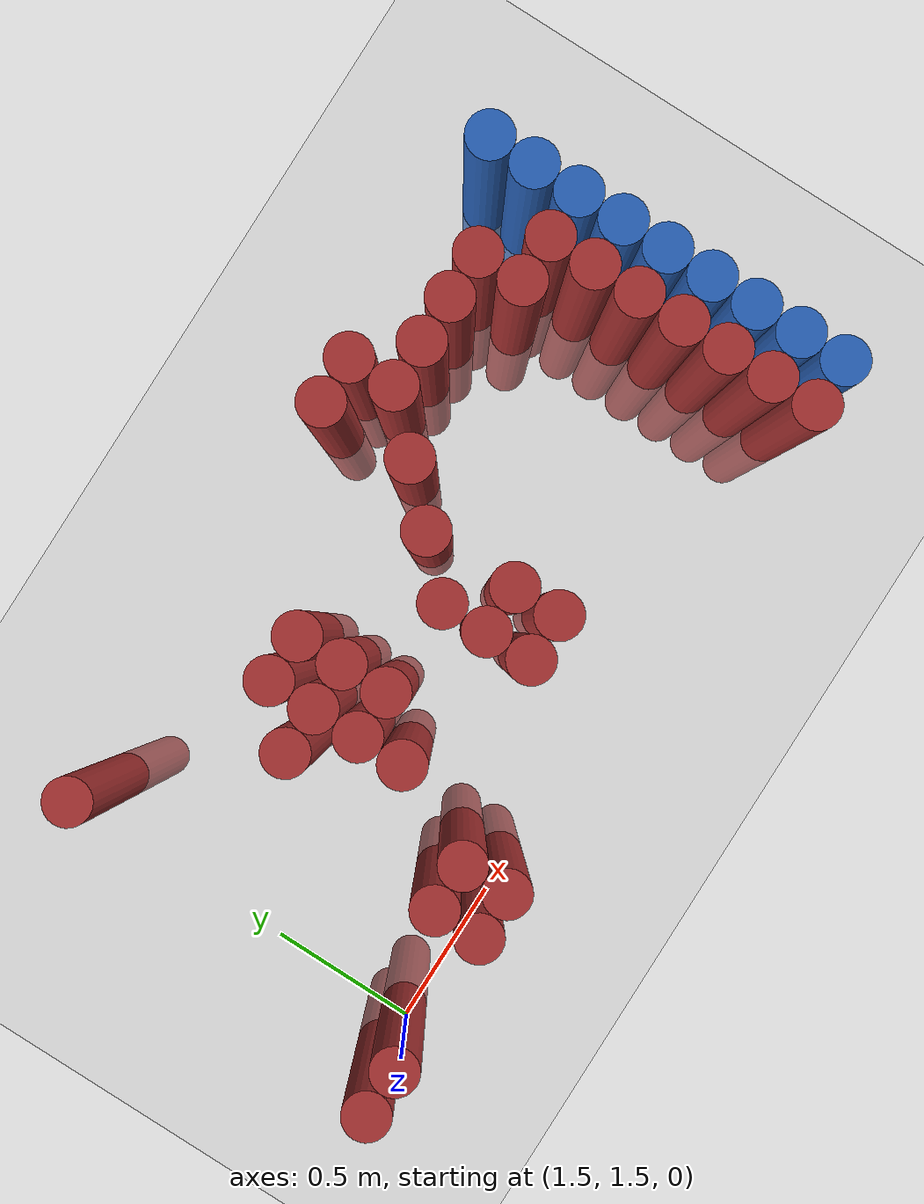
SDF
<sdf version="1.6">
 <world name="default">
  <model name="ground_plane">
   <static>1</static>
   <link name="link">
    <collision name="collision">
     <geometry><plane><normal>0 0 1</normal><size>100 100</size></plane></geometry>
     <surface><friction><ode><mu>100</mu><mu2>50</mu2></ode></friction></surface>
    </collision>
    <visual name="visual">
     <cast_shadows>0</cast_shadows>
     <geometry><plane><normal>0 0 1</normal><size>100 100</size></plane></geometry>
     <material>
      <script><uri>file://media/materials/scripts/gazebo.material</uri><name>Gazebo/Grey</name></script>
     </material>
    </visual>
   </link>
  </model>
  <model name="unit_cylinder_136">
   <static>1</static>
   <pose>3.925000 1.675000 0.000000 0.000000 0.000000 0.000000</pose>
   <link name="link">
    <inertial>
     <mass>1</mass>
     <inertia><ixx>0.145833</ixx><ixy>0</ixy><ixz>0</ixz><iyy>0.145833</iyy><iyz>0</iyz><izz>0.125</izz></inertia>
    </inertial>
    <collision name="collision">
     <geometry><cylinder><radius>0.075000</radius><length>1.5</length></cylinder></geometry>
    </collision>
    <visual name="visual">
     <geometry><cylinder><radius>0.075000</radius><length>1.5</length></cylinder></geometry>
     <material>
      <ambient>0.152000 0.379000 0.720000 1</ambient>
      <diffuse>0.152000 0.379000 0.720000 1</diffuse>
     </material>
     <material>
      <script><name>Gazebo/Grey</name><uri>file://media/materials/scripts/gazebo.material</uri></script>
     </material>
    </visual>
   </link>
  </model>
  <model name="unit_cylinder_138">
   <static>1</static>
   <pose>3.925000 1.825000 0.000000 0.000000 0.000000 0.000000</pose>
   <link name="link">
    <inertial>
     <mass>1</mass>
     <inertia><ixx>0.145833</ixx><ixy>0</ixy><ixz>0</ixz><iyy>0.145833</iyy><iyz>0</iyz><izz>0.125</izz></inertia>
    </inertial>
    <collision name="collision">
     <geometry><cylinder><radius>0.075000</radius><length>1.5</length></cylinder></geometry>
    </collision>
    <visual name="visual">
     <geometry><cylinder><radius>0.075000</radius><length>1.5</length></cylinder></geometry>
     <material>
      <ambient>0.152000 0.379000 0.720000 1</ambient>
      <diffuse>0.152000 0.379000 0.720000 1</diffuse>
     </material>
     <material>
      <script><name>Gazebo/Grey</name><uri>file://media/materials/scripts/gazebo.material</uri></script>
     </material>
    </visual>
   </link>
  </model>
  <model name="unit_cylinder_140">
   <static>1</static>
   <pose>3.925000 1.975000 0.000000 0.000000 0.000000 0.000000</pose>
   <link name="link">
    <inertial>
     <mass>1</mass>
     <inertia><ixx>0.145833</ixx><ixy>0</ixy><ixz>0</ixz><iyy>0.145833</iyy><iyz>0</iyz><izz>0.125</izz></inertia>
    </inertial>
    <collision name="collision">
     <geometry><cylinder><radius>0.075000</radius><length>1.5</length></cylinder></geometry>
    </collision>
    <visual name="visual">
     <geometry><cylinder><radius>0.075000</radius><length>1.5</length></cylinder></geometry>
     <material>
      <ambient>0.152000 0.379000 0.720000 1</ambient>
      <diffuse>0.152000 0.379000 0.720000 1</diffuse>
     </material>
     <material>
      <script><name>Gazebo/Grey</name><uri>file://media/materials/scripts/gazebo.material</uri></script>
     </material>
    </visual>
   </link>
  </model>
  <model name="unit_cylinder_142">
   <static>1</static>
   <pose>3.925000 2.125000 0.000000 0.000000 0.000000 0.000000</pose>
   <link name="link">
    <inertial>
     <mass>1</mass>
     <inertia><ixx>0.145833</ixx><ixy>0</ixy><ixz>0</ixz><iyy>0.145833</iyy><iyz>0</iyz><izz>0.125</izz></inertia>
    </inertial>
    <collision name="collision">
     <geometry><cylinder><radius>0.075000</radius><length>1.5</length></cylinder></geometry>
    </collision>
    <visual name="visual">
     <geometry><cylinder><radius>0.075000</radius><length>1.5</length></cylinder></geometry>
     <material>
      <ambient>0.152000 0.379000 0.720000 1</ambient>
      <diffuse>0.152000 0.379000 0.720000 1</diffuse>
     </material>
     <material>
      <script><name>Gazebo/Grey</name><uri>file://media/materials/scripts/gazebo.material</uri></script>
     </material>
    </visual>
   </link>
  </model>
  <model name="unit_cylinder_144">
   <static>1</static>
   <pose>3.925000 2.275000 0.000000 0.000000 0.000000 0.000000</pose>
   <link name="link">
    <inertial>
     <mass>1</mass>
     <inertia><ixx>0.145833</ixx><ixy>0</ixy><ixz>0</ixz><iyy>0.145833</iyy><iyz>0</iyz><izz>0.125</izz></inertia>
    </inertial>
    <collision name="collision">
     <geometry><cylinder><radius>0.075000</radius><length>1.5</length></cylinder></geometry>
    </collision>
    <visual name="visual">
     <geometry><cylinder><radius>0.075000</radius><length>1.5</length></cylinder></geometry>
     <material>
      <ambient>0.152000 0.379000 0.720000 1</ambient>
      <diffuse>0.152000 0.379000 0.720000 1</diffuse>
     </material>
     <material>
      <script><name>Gazebo/Grey</name><uri>file://media/materials/scripts/gazebo.material</uri></script>
     </material>
    </visual>
   </link>
  </model>
  <model name="unit_cylinder_146">
   <static>1</static>
   <pose>3.925000 2.425000 0.000000 0.000000 0.000000 0.000000</pose>
   <link name="link">
    <inertial>
     <mass>1</mass>
     <inertia><ixx>0.145833</ixx><ixy>0</ixy><ixz>0</ixz><iyy>0.145833</iyy><iyz>0</iyz><izz>0.125</izz></inertia>
    </inertial>
    <collision name="collision">
     <geometry><cylinder><radius>0.075000</radius><length>1.5</length></cylinder></geometry>
    </collision>
    <visual name="visual">
     <geometry><cylinder><radius>0.075000</radius><length>1.5</length></cylinder></geometry>
     <material>
      <ambient>0.152000 0.379000 0.720000 1</ambient>
      <diffuse>0.152000 0.379000 0.720000 1</diffuse>
     </material>
     <material>
      <script><name>Gazebo/Grey</name><uri>file://media/materials/scripts/gazebo.material</uri></script>
     </material>
    </visual>
   </link>
  </model>
  <model name="unit_cylinder_148">
   <static>1</static>
   <pose>3.925000 2.575000 0.000000 0.000000 0.000000 0.000000</pose>
   <link name="link">
    <inertial>
     <mass>1</mass>
     <inertia><ixx>0.145833</ixx><ixy>0</ixy><ixz>0</ixz><iyy>0.145833</iyy><iyz>0</iyz><izz>0.125</izz></inertia>
    </inertial>
    <collision name="collision">
     <geometry><cylinder><radius>0.075000</radius><length>1.5</length></cylinder></geometry>
    </collision>
    <visual name="visual">
     <geometry><cylinder><radius>0.075000</radius><length>1.5</length></cylinder></geometry>
     <material>
      <ambient>0.152000 0.379000 0.720000 1</ambient>
      <diffuse>0.152000 0.379000 0.720000 1</diffuse>
     </material>
     <material>
      <script><name>Gazebo/Grey</name><uri>file://media/materials/scripts/gazebo.material</uri></script>
     </material>
    </visual>
   </link>
  </model>
  <model name="unit_cylinder_150">
   <static>1</static>
   <pose>3.925000 2.725000 0.000000 0.000000 0.000000 0.000000</pose>
   <link name="link">
    <inertial>
     <mass>1</mass>
     <inertia><ixx>0.145833</ixx><ixy>0</ixy><ixz>0</ixz><iyy>0.145833</iyy><iyz>0</iyz><izz>0.125</izz></inertia>
    </inertial>
    <collision name="collision">
     <geometry><cylinder><radius>0.075000</radius><length>1.5</length></cylinder></geometry>
    </collision>
    <visual name="visual">
     <geometry><cylinder><radius>0.075000</radius><length>1.5</length></cylinder></geometry>
     <material>
      <ambient>0.152000 0.379000 0.720000 1</ambient>
      <diffuse>0.152000 0.379000 0.720000 1</diffuse>
     </material>
     <material>
      <script><name>Gazebo/Grey</name><uri>file://media/materials/scripts/gazebo.material</uri></script>
     </material>
    </visual>
   </link>
  </model>
  <model name="unit_cylinder_420">
   <static>1</static>
   <pose>1.375000 1.525000 0.000000 0.000000 0.000000 0.000000</pose>
   <link name="link">
    <inertial>
     <mass>1</mass>
     <inertia><ixx>0.145833</ixx><ixy>0</ixy><ixz>0</ixz><iyy>0.145833</iyy><iyz>0</iyz><izz>0.125</izz></inertia>
    </inertial>
    <collision name="collision">
     <geometry><cylinder><radius>0.075000</radius><length>1.5</length></cylinder></geometry>
    </collision>
    <visual name="visual">
     <geometry><cylinder><radius>0.075000</radius><length>1.5</length></cylinder></geometry>
     <material>
      <ambient>0.648000 0.192000 0.192000 1</ambient>
      <diffuse>0.648000 0.192000 0.192000 1</diffuse>
     </material>
     <material>
      <script><name>Gazebo/Grey</name><uri>file://media/materials/scripts/gazebo.material</uri></script>
     </material>
    </visual>
   </link>
  </model>
  <model name="unit_cylinder_427">
   <static>1</static>
   <pose>1.525000 1.525000 0.000000 0.000000 0.000000 0.000000</pose>
   <link name="link">
    <inertial>
     <mass>1</mass>
     <inertia><ixx>0.145833</ixx><ixy>0</ixy><ixz>0</ixz><iyy>0.145833</iyy><iyz>0</iyz><izz>0.125</izz></inertia>
    </inertial>
    <collision name="collision">
     <geometry><cylinder><radius>0.075000</radius><length>1.5</length></cylinder></geometry>
    </collision>
    <visual name="visual">
     <geometry><cylinder><radius>0.075000</radius><length>1.5</length></cylinder></geometry>
     <material>
      <ambient>0.648000 0.192000 0.192000 1</ambient>
      <diffuse>0.648000 0.192000 0.192000 1</diffuse>
     </material>
     <material>
      <script><name>Gazebo/Grey</name><uri>file://media/materials/scripts/gazebo.material</uri></script>
     </material>
    </visual>
   </link>
  </model>
  <model name="unit_cylinder_437">
   <static>1</static>
   <pose>1.675000 2.725000 0.000000 0.000000 0.000000 0.000000</pose>
   <link name="link">
    <inertial>
     <mass>1</mass>
     <inertia><ixx>0.145833</ixx><ixy>0</ixy><ixz>0</ixz><iyy>0.145833</iyy><iyz>0</iyz><izz>0.125</izz></inertia>
    </inertial>
    <collision name="collision">
     <geometry><cylinder><radius>0.075000</radius><length>1.5</length></cylinder></geometry>
    </collision>
    <visual name="visual">
     <geometry><cylinder><radius>0.075000</radius><length>1.5</length></cylinder></geometry>
     <material>
      <ambient>0.648000 0.192000 0.192000 1</ambient>
      <diffuse>0.648000 0.192000 0.192000 1</diffuse>
     </material>
     <material>
      <script><name>Gazebo/Grey</name><uri>file://media/materials/scripts/gazebo.material</uri></script>
     </material>
    </visual>
   </link>
  </model>
  <model name="unit_cylinder_451">
   <static>1</static>
   <pose>1.975000 1.525000 0.000000 0.000000 0.000000 0.000000</pose>
   <link name="link">
    <inertial>
     <mass>1</mass>
     <inertia><ixx>0.145833</ixx><ixy>0</ixy><ixz>0</ixz><iyy>0.145833</iyy><iyz>0</iyz><izz>0.125</izz></inertia>
    </inertial>
    <collision name="collision">
     <geometry><cylinder><radius>0.075000</radius><length>1.5</length></cylinder></geometry>
    </collision>
    <visual name="visual">
     <geometry><cylinder><radius>0.075000</radius><length>1.5</length></cylinder></geometry>
     <material>
      <ambient>0.648000 0.192000 0.192000 1</ambient>
      <diffuse>0.648000 0.192000 0.192000 1</diffuse>
     </material>
     <material>
      <script><name>Gazebo/Grey</name><uri>file://media/materials/scripts/gazebo.material</uri></script>
     </material>
    </visual>
   </link>
  </model>
  <model name="unit_cylinder_452">
   <static>1</static>
   <pose>1.975000 1.675000 0.000000 0.000000 0.000000 0.000000</pose>
   <link name="link">
    <inertial>
     <mass>1</mass>
     <inertia><ixx>0.145833</ixx><ixy>0</ixy><ixz>0</ixz><iyy>0.145833</iyy><iyz>0</iyz><izz>0.125</izz></inertia>
    </inertial>
    <collision name="collision">
     <geometry><cylinder><radius>0.075000</radius><length>1.5</length></cylinder></geometry>
    </collision>
    <visual name="visual">
     <geometry><cylinder><radius>0.075000</radius><length>1.5</length></cylinder></geometry>
     <material>
      <ambient>0.648000 0.192000 0.192000 1</ambient>
      <diffuse>0.648000 0.192000 0.192000 1</diffuse>
     </material>
     <material>
      <script><name>Gazebo/Grey</name><uri>file://media/materials/scripts/gazebo.material</uri></script>
     </material>
    </visual>
   </link>
  </model>
  <model name="unit_cylinder_459">
   <static>1</static>
   <pose>2.125000 1.525000 0.000000 0.000000 0.000000 0.000000</pose>
   <link name="link">
    <inertial>
     <mass>1</mass>
     <inertia><ixx>0.145833</ixx><ixy>0</ixy><ixz>0</ixz><iyy>0.145833</iyy><iyz>0</iyz><izz>0.125</izz></inertia>
    </inertial>
    <collision name="collision">
     <geometry><cylinder><radius>0.075000</radius><length>1.5</length></cylinder></geometry>
    </collision>
    <visual name="visual">
     <geometry><cylinder><radius>0.075000</radius><length>1.5</length></cylinder></geometry>
     <material>
      <ambient>0.648000 0.192000 0.192000 1</ambient>
      <diffuse>0.648000 0.192000 0.192000 1</diffuse>
     </material>
     <material>
      <script><name>Gazebo/Grey</name><uri>file://media/materials/scripts/gazebo.material</uri></script>
     </material>
    </visual>
   </link>
  </model>
  <model name="unit_cylinder_460">
   <static>1</static>
   <pose>2.125000 1.675000 0.000000 0.000000 0.000000 0.000000</pose>
   <link name="link">
    <inertial>
     <mass>1</mass>
     <inertia><ixx>0.145833</ixx><ixy>0</ixy><ixz>0</ixz><iyy>0.145833</iyy><iyz>0</iyz><izz>0.125</izz></inertia>
    </inertial>
    <collision name="collision">
     <geometry><cylinder><radius>0.075000</radius><length>1.5</length></cylinder></geometry>
    </collision>
    <visual name="visual">
     <geometry><cylinder><radius>0.075000</radius><length>1.5</length></cylinder></geometry>
     <material>
      <ambient>0.648000 0.192000 0.192000 1</ambient>
      <diffuse>0.648000 0.192000 0.192000 1</diffuse>
     </material>
     <material>
      <script><name>Gazebo/Grey</name><uri>file://media/materials/scripts/gazebo.material</uri></script>
     </material>
    </visual>
   </link>
  </model>
  <model name="unit_cylinder_461">
   <static>1</static>
   <pose>2.125000 2.275000 0.000000 0.000000 0.000000 0.000000</pose>
   <link name="link">
    <inertial>
     <mass>1</mass>
     <inertia><ixx>0.145833</ixx><ixy>0</ixy><ixz>0</ixz><iyy>0.145833</iyy><iyz>0</iyz><izz>0.125</izz></inertia>
    </inertial>
    <collision name="collision">
     <geometry><cylinder><radius>0.075000</radius><length>1.5</length></cylinder></geometry>
    </collision>
    <visual name="visual">
     <geometry><cylinder><radius>0.075000</radius><length>1.5</length></cylinder></geometry>
     <material>
      <ambient>0.648000 0.192000 0.192000 1</ambient>
      <diffuse>0.648000 0.192000 0.192000 1</diffuse>
     </material>
     <material>
      <script><name>Gazebo/Grey</name><uri>file://media/materials/scripts/gazebo.material</uri></script>
     </material>
    </visual>
   </link>
  </model>
  <model name="unit_cylinder_465">
   <static>1</static>
   <pose>2.275000 1.975000 0.000000 0.000000 0.000000 0.000000</pose>
   <link name="link">
    <inertial>
     <mass>1</mass>
     <inertia><ixx>0.145833</ixx><ixy>0</ixy><ixz>0</ixz><iyy>0.145833</iyy><iyz>0</iyz><izz>0.125</izz></inertia>
    </inertial>
    <collision name="collision">
     <geometry><cylinder><radius>0.075000</radius><length>1.5</length></cylinder></geometry>
    </collision>
    <visual name="visual">
     <geometry><cylinder><radius>0.075000</radius><length>1.5</length></cylinder></geometry>
     <material>
      <ambient>0.648000 0.192000 0.192000 1</ambient>
      <diffuse>0.648000 0.192000 0.192000 1</diffuse>
     </material>
     <material>
      <script><name>Gazebo/Grey</name><uri>file://media/materials/scripts/gazebo.material</uri></script>
     </material>
    </visual>
   </link>
  </model>
  <model name="unit_cylinder_466">
   <static>1</static>
   <pose>2.275000 2.125000 0.000000 0.000000 0.000000 0.000000</pose>
   <link name="link">
    <inertial>
     <mass>1</mass>
     <inertia><ixx>0.145833</ixx><ixy>0</ixy><ixz>0</ixz><iyy>0.145833</iyy><iyz>0</iyz><izz>0.125</izz></inertia>
    </inertial>
    <collision name="collision">
     <geometry><cylinder><radius>0.075000</radius><length>1.5</length></cylinder></geometry>
    </collision>
    <visual name="visual">
     <geometry><cylinder><radius>0.075000</radius><length>1.5</length></cylinder></geometry>
     <material>
      <ambient>0.648000 0.192000 0.192000 1</ambient>
      <diffuse>0.648000 0.192000 0.192000 1</diffuse>
     </material>
     <material>
      <script><name>Gazebo/Grey</name><uri>file://media/materials/scripts/gazebo.material</uri></script>
     </material>
    </visual>
   </link>
  </model>
  <model name="unit_cylinder_467">
   <static>1</static>
   <pose>2.275000 2.275000 0.000000 0.000000 0.000000 0.000000</pose>
   <link name="link">
    <inertial>
     <mass>1</mass>
     <inertia><ixx>0.145833</ixx><ixy>0</ixy><ixz>0</ixz><iyy>0.145833</iyy><iyz>0</iyz><izz>0.125</izz></inertia>
    </inertial>
    <collision name="collision">
     <geometry><cylinder><radius>0.075000</radius><length>1.5</length></cylinder></geometry>
    </collision>
    <visual name="visual">
     <geometry><cylinder><radius>0.075000</radius><length>1.5</length></cylinder></geometry>
     <material>
      <ambient>0.648000 0.192000 0.192000 1</ambient>
      <diffuse>0.648000 0.192000 0.192000 1</diffuse>
     </material>
     <material>
      <script><name>Gazebo/Grey</name><uri>file://media/materials/scripts/gazebo.material</uri></script>
     </material>
    </visual>
   </link>
  </model>
  <model name="unit_cylinder_468">
   <static>1</static>
   <pose>2.275000 2.425000 0.000000 0.000000 0.000000 0.000000</pose>
   <link name="link">
    <inertial>
     <mass>1</mass>
     <inertia><ixx>0.145833</ixx><ixy>0</ixy><ixz>0</ixz><iyy>0.145833</iyy><iyz>0</iyz><izz>0.125</izz></inertia>
    </inertial>
    <collision name="collision">
     <geometry><cylinder><radius>0.075000</radius><length>1.5</length></cylinder></geometry>
    </collision>
    <visual name="visual">
     <geometry><cylinder><radius>0.075000</radius><length>1.5</length></cylinder></geometry>
     <material>
      <ambient>0.648000 0.192000 0.192000 1</ambient>
      <diffuse>0.648000 0.192000 0.192000 1</diffuse>
     </material>
     <material>
      <script><name>Gazebo/Grey</name><uri>file://media/materials/scripts/gazebo.material</uri></script>
     </material>
    </visual>
   </link>
  </model>
  <model name="unit_cylinder_475">
   <static>1</static>
   <pose>2.425000 2.125000 0.000000 0.000000 0.000000 0.000000</pose>
   <link name="link">
    <inertial>
     <mass>1</mass>
     <inertia><ixx>0.145833</ixx><ixy>0</ixy><ixz>0</ixz><iyy>0.145833</iyy><iyz>0</iyz><izz>0.125</izz></inertia>
    </inertial>
    <collision name="collision">
     <geometry><cylinder><radius>0.075000</radius><length>1.5</length></cylinder></geometry>
    </collision>
    <visual name="visual">
     <geometry><cylinder><radius>0.075000</radius><length>1.5</length></cylinder></geometry>
     <material>
      <ambient>0.648000 0.192000 0.192000 1</ambient>
      <diffuse>0.648000 0.192000 0.192000 1</diffuse>
     </material>
     <material>
      <script><name>Gazebo/Grey</name><uri>file://media/materials/scripts/gazebo.material</uri></script>
     </material>
    </visual>
   </link>
  </model>
  <model name="unit_cylinder_476">
   <static>1</static>
   <pose>2.425000 2.275000 0.000000 0.000000 0.000000 0.000000</pose>
   <link name="link">
    <inertial>
     <mass>1</mass>
     <inertia><ixx>0.145833</ixx><ixy>0</ixy><ixz>0</ixz><iyy>0.145833</iyy><iyz>0</iyz><izz>0.125</izz></inertia>
    </inertial>
    <collision name="collision">
     <geometry><cylinder><radius>0.075000</radius><length>1.5</length></cylinder></geometry>
    </collision>
    <visual name="visual">
     <geometry><cylinder><radius>0.075000</radius><length>1.5</length></cylinder></geometry>
     <material>
      <ambient>0.648000 0.192000 0.192000 1</ambient>
      <diffuse>0.648000 0.192000 0.192000 1</diffuse>
     </material>
     <material>
      <script><name>Gazebo/Grey</name><uri>file://media/materials/scripts/gazebo.material</uri></script>
     </material>
    </visual>
   </link>
  </model>
  <model name="unit_cylinder_477">
   <static>1</static>
   <pose>2.425000 2.425000 0.000000 0.000000 0.000000 0.000000</pose>
   <link name="link">
    <inertial>
     <mass>1</mass>
     <inertia><ixx>0.145833</ixx><ixy>0</ixy><ixz>0</ixz><iyy>0.145833</iyy><iyz>0</iyz><izz>0.125</izz></inertia>
    </inertial>
    <collision name="collision">
     <geometry><cylinder><radius>0.075000</radius><length>1.5</length></cylinder></geometry>
    </collision>
    <visual name="visual">
     <geometry><cylinder><radius>0.075000</radius><length>1.5</length></cylinder></geometry>
     <material>
      <ambient>0.648000 0.192000 0.192000 1</ambient>
      <diffuse>0.648000 0.192000 0.192000 1</diffuse>
     </material>
     <material>
      <script><name>Gazebo/Grey</name><uri>file://media/materials/scripts/gazebo.material</uri></script>
     </material>
    </visual>
   </link>
  </model>
  <model name="unit_cylinder_484">
   <static>1</static>
   <pose>2.725000 1.825000 0.000000 0.000000 0.000000 0.000000</pose>
   <link name="link">
    <inertial>
     <mass>1</mass>
     <inertia><ixx>0.145833</ixx><ixy>0</ixy><ixz>0</ixz><iyy>0.145833</iyy><iyz>0</iyz><izz>0.125</izz></inertia>
    </inertial>
    <collision name="collision">
     <geometry><cylinder><radius>0.075000</radius><length>1.5</length></cylinder></geometry>
    </collision>
    <visual name="visual">
     <geometry><cylinder><radius>0.075000</radius><length>1.5</length></cylinder></geometry>
     <material>
      <ambient>0.648000 0.192000 0.192000 1</ambient>
      <diffuse>0.648000 0.192000 0.192000 1</diffuse>
     </material>
     <material>
      <script><name>Gazebo/Grey</name><uri>file://media/materials/scripts/gazebo.material</uri></script>
     </material>
    </visual>
   </link>
  </model>
  <model name="unit_cylinder_485">
   <static>1</static>
   <pose>2.725000 1.975000 0.000000 0.000000 0.000000 0.000000</pose>
   <link name="link">
    <inertial>
     <mass>1</mass>
     <inertia><ixx>0.145833</ixx><ixy>0</ixy><ixz>0</ixz><iyy>0.145833</iyy><iyz>0</iyz><izz>0.125</izz></inertia>
    </inertial>
    <collision name="collision">
     <geometry><cylinder><radius>0.075000</radius><length>1.5</length></cylinder></geometry>
    </collision>
    <visual name="visual">
     <geometry><cylinder><radius>0.075000</radius><length>1.5</length></cylinder></geometry>
     <material>
      <ambient>0.648000 0.192000 0.192000 1</ambient>
      <diffuse>0.648000 0.192000 0.192000 1</diffuse>
     </material>
     <material>
      <script><name>Gazebo/Grey</name><uri>file://media/materials/scripts/gazebo.material</uri></script>
     </material>
    </visual>
   </link>
  </model>
  <model name="unit_cylinder_486">
   <static>1</static>
   <pose>2.725000 2.125000 0.000000 0.000000 0.000000 0.000000</pose>
   <link name="link">
    <inertial>
     <mass>1</mass>
     <inertia><ixx>0.145833</ixx><ixy>0</ixy><ixz>0</ixz><iyy>0.145833</iyy><iyz>0</iyz><izz>0.125</izz></inertia>
    </inertial>
    <collision name="collision">
     <geometry><cylinder><radius>0.075000</radius><length>1.5</length></cylinder></geometry>
    </collision>
    <visual name="visual">
     <geometry><cylinder><radius>0.075000</radius><length>1.5</length></cylinder></geometry>
     <material>
      <ambient>0.648000 0.192000 0.192000 1</ambient>
      <diffuse>0.648000 0.192000 0.192000 1</diffuse>
     </material>
     <material>
      <script><name>Gazebo/Grey</name><uri>file://media/materials/scripts/gazebo.material</uri></script>
     </material>
    </visual>
   </link>
  </model>
  <model name="unit_cylinder_495">
   <static>1</static>
   <pose>2.875000 1.825000 0.000000 0.000000 0.000000 0.000000</pose>
   <link name="link">
    <inertial>
     <mass>1</mass>
     <inertia><ixx>0.145833</ixx><ixy>0</ixy><ixz>0</ixz><iyy>0.145833</iyy><iyz>0</iyz><izz>0.125</izz></inertia>
    </inertial>
    <collision name="collision">
     <geometry><cylinder><radius>0.075000</radius><length>1.5</length></cylinder></geometry>
    </collision>
    <visual name="visual">
     <geometry><cylinder><radius>0.075000</radius><length>1.5</length></cylinder></geometry>
     <material>
      <ambient>0.648000 0.192000 0.192000 1</ambient>
      <diffuse>0.648000 0.192000 0.192000 1</diffuse>
     </material>
     <material>
      <script><name>Gazebo/Grey</name><uri>file://media/materials/scripts/gazebo.material</uri></script>
     </material>
    </visual>
   </link>
  </model>
  <model name="unit_cylinder_496">
   <static>1</static>
   <pose>2.875000 1.975000 0.000000 0.000000 0.000000 0.000000</pose>
   <link name="link">
    <inertial>
     <mass>1</mass>
     <inertia><ixx>0.145833</ixx><ixy>0</ixy><ixz>0</ixz><iyy>0.145833</iyy><iyz>0</iyz><izz>0.125</izz></inertia>
    </inertial>
    <collision name="collision">
     <geometry><cylinder><radius>0.075000</radius><length>1.5</length></cylinder></geometry>
    </collision>
    <visual name="visual">
     <geometry><cylinder><radius>0.075000</radius><length>1.5</length></cylinder></geometry>
     <material>
      <ambient>0.648000 0.192000 0.192000 1</ambient>
      <diffuse>0.648000 0.192000 0.192000 1</diffuse>
     </material>
     <material>
      <script><name>Gazebo/Grey</name><uri>file://media/materials/scripts/gazebo.material</uri></script>
     </material>
    </visual>
   </link>
  </model>
  <model name="unit_cylinder_497">
   <static>1</static>
   <pose>2.875000 2.275000 0.000000 0.000000 0.000000 0.000000</pose>
   <link name="link">
    <inertial>
     <mass>1</mass>
     <inertia><ixx>0.145833</ixx><ixy>0</ixy><ixz>0</ixz><iyy>0.145833</iyy><iyz>0</iyz><izz>0.125</izz></inertia>
    </inertial>
    <collision name="collision">
     <geometry><cylinder><radius>0.075000</radius><length>1.5</length></cylinder></geometry>
    </collision>
    <visual name="visual">
     <geometry><cylinder><radius>0.075000</radius><length>1.5</length></cylinder></geometry>
     <material>
      <ambient>0.648000 0.192000 0.192000 1</ambient>
      <diffuse>0.648000 0.192000 0.192000 1</diffuse>
     </material>
     <material>
      <script><name>Gazebo/Grey</name><uri>file://media/materials/scripts/gazebo.material</uri></script>
     </material>
    </visual>
   </link>
  </model>
  <model name="unit_cylinder_509">
   <static>1</static>
   <pose>3.025000 2.425000 0.000000 0.000000 0.000000 0.000000</pose>
   <link name="link">
    <inertial>
     <mass>1</mass>
     <inertia><ixx>0.145833</ixx><ixy>0</ixy><ixz>0</ixz><iyy>0.145833</iyy><iyz>0</iyz><izz>0.125</izz></inertia>
    </inertial>
    <collision name="collision">
     <geometry><cylinder><radius>0.075000</radius><length>1.5</length></cylinder></geometry>
    </collision>
    <visual name="visual">
     <geometry><cylinder><radius>0.075000</radius><length>1.5</length></cylinder></geometry>
     <material>
      <ambient>0.648000 0.192000 0.192000 1</ambient>
      <diffuse>0.648000 0.192000 0.192000 1</diffuse>
     </material>
     <material>
      <script><name>Gazebo/Grey</name><uri>file://media/materials/scripts/gazebo.material</uri></script>
     </material>
    </visual>
   </link>
  </model>
  <model name="unit_cylinder_510">
   <static>1</static>
   <pose>3.025000 2.725000 0.000000 0.000000 0.000000 0.000000</pose>
   <link name="link">
    <inertial>
     <mass>1</mass>
     <inertia><ixx>0.145833</ixx><ixy>0</ixy><ixz>0</ixz><iyy>0.145833</iyy><iyz>0</iyz><izz>0.125</izz></inertia>
    </inertial>
    <collision name="collision">
     <geometry><cylinder><radius>0.075000</radius><length>1.5</length></cylinder></geometry>
    </collision>
    <visual name="visual">
     <geometry><cylinder><radius>0.075000</radius><length>1.5</length></cylinder></geometry>
     <material>
      <ambient>0.648000 0.192000 0.192000 1</ambient>
      <diffuse>0.648000 0.192000 0.192000 1</diffuse>
     </material>
     <material>
      <script><name>Gazebo/Grey</name><uri>file://media/materials/scripts/gazebo.material</uri></script>
     </material>
    </visual>
   </link>
  </model>
  <model name="unit_cylinder_520">
   <static>1</static>
   <pose>3.175000 2.575000 0.000000 0.000000 0.000000 0.000000</pose>
   <link name="link">
    <inertial>
     <mass>1</mass>
     <inertia><ixx>0.145833</ixx><ixy>0</ixy><ixz>0</ixz><iyy>0.145833</iyy><iyz>0</iyz><izz>0.125</izz></inertia>
    </inertial>
    <collision name="collision">
     <geometry><cylinder><radius>0.075000</radius><length>1.5</length></cylinder></geometry>
    </collision>
    <visual name="visual">
     <geometry><cylinder><radius>0.075000</radius><length>1.5</length></cylinder></geometry>
     <material>
      <ambient>0.648000 0.192000 0.192000 1</ambient>
      <diffuse>0.648000 0.192000 0.192000 1</diffuse>
     </material>
     <material>
      <script><name>Gazebo/Grey</name><uri>file://media/materials/scripts/gazebo.material</uri></script>
     </material>
    </visual>
   </link>
  </model>
  <model name="unit_cylinder_521">
   <static>1</static>
   <pose>3.175000 2.725000 0.000000 0.000000 0.000000 0.000000</pose>
   <link name="link">
    <inertial>
     <mass>1</mass>
     <inertia><ixx>0.145833</ixx><ixy>0</ixy><ixz>0</ixz><iyy>0.145833</iyy><iyz>0</iyz><izz>0.125</izz></inertia>
    </inertial>
    <collision name="collision">
     <geometry><cylinder><radius>0.075000</radius><length>1.5</length></cylinder></geometry>
    </collision>
    <visual name="visual">
     <geometry><cylinder><radius>0.075000</radius><length>1.5</length></cylinder></geometry>
     <material>
      <ambient>0.648000 0.192000 0.192000 1</ambient>
      <diffuse>0.648000 0.192000 0.192000 1</diffuse>
     </material>
     <material>
      <script><name>Gazebo/Grey</name><uri>file://media/materials/scripts/gazebo.material</uri></script>
     </material>
    </visual>
   </link>
  </model>
  <model name="unit_cylinder_527">
   <static>1</static>
   <pose>3.325000 2.575000 0.000000 0.000000 0.000000 0.000000</pose>
   <link name="link">
    <inertial>
     <mass>1</mass>
     <inertia><ixx>0.145833</ixx><ixy>0</ixy><ixz>0</ixz><iyy>0.145833</iyy><iyz>0</iyz><izz>0.125</izz></inertia>
    </inertial>
    <collision name="collision">
     <geometry><cylinder><radius>0.075000</radius><length>1.5</length></cylinder></geometry>
    </collision>
    <visual name="visual">
     <geometry><cylinder><radius>0.075000</radius><length>1.5</length></cylinder></geometry>
     <material>
      <ambient>0.648000 0.192000 0.192000 1</ambient>
      <diffuse>0.648000 0.192000 0.192000 1</diffuse>
     </material>
     <material>
      <script><name>Gazebo/Grey</name><uri>file://media/materials/scripts/gazebo.material</uri></script>
     </material>
    </visual>
   </link>
  </model>
  <model name="unit_cylinder_534">
   <static>1</static>
   <pose>3.475000 2.575000 0.000000 0.000000 0.000000 0.000000</pose>
   <link name="link">
    <inertial>
     <mass>1</mass>
     <inertia><ixx>0.145833</ixx><ixy>0</ixy><ixz>0</ixz><iyy>0.145833</iyy><iyz>0</iyz><izz>0.125</izz></inertia>
    </inertial>
    <collision name="collision">
     <geometry><cylinder><radius>0.075000</radius><length>1.5</length></cylinder></geometry>
    </collision>
    <visual name="visual">
     <geometry><cylinder><radius>0.075000</radius><length>1.5</length></cylinder></geometry>
     <material>
      <ambient>0.648000 0.192000 0.192000 1</ambient>
      <diffuse>0.648000 0.192000 0.192000 1</diffuse>
     </material>
     <material>
      <script><name>Gazebo/Grey</name><uri>file://media/materials/scripts/gazebo.material</uri></script>
     </material>
    </visual>
   </link>
  </model>
  <model name="unit_cylinder_543">
   <static>1</static>
   <pose>3.625000 2.425000 0.000000 0.000000 0.000000 0.000000</pose>
   <link name="link">
    <inertial>
     <mass>1</mass>
     <inertia><ixx>0.145833</ixx><ixy>0</ixy><ixz>0</ixz><iyy>0.145833</iyy><iyz>0</iyz><izz>0.125</izz></inertia>
    </inertial>
    <collision name="collision">
     <geometry><cylinder><radius>0.075000</radius><length>1.5</length></cylinder></geometry>
    </collision>
    <visual name="visual">
     <geometry><cylinder><radius>0.075000</radius><length>1.5</length></cylinder></geometry>
     <material>
      <ambient>0.648000 0.192000 0.192000 1</ambient>
      <diffuse>0.648000 0.192000 0.192000 1</diffuse>
     </material>
     <material>
      <script><name>Gazebo/Grey</name><uri>file://media/materials/scripts/gazebo.material</uri></script>
     </material>
    </visual>
   </link>
  </model>
  <model name="unit_cylinder_544">
   <static>1</static>
   <pose>3.625000 2.575000 0.000000 0.000000 0.000000 0.000000</pose>
   <link name="link">
    <inertial>
     <mass>1</mass>
     <inertia><ixx>0.145833</ixx><ixy>0</ixy><ixz>0</ixz><iyy>0.145833</iyy><iyz>0</iyz><izz>0.125</izz></inertia>
    </inertial>
    <collision name="collision">
     <geometry><cylinder><radius>0.075000</radius><length>1.5</length></cylinder></geometry>
    </collision>
    <visual name="visual">
     <geometry><cylinder><radius>0.075000</radius><length>1.5</length></cylinder></geometry>
     <material>
      <ambient>0.648000 0.192000 0.192000 1</ambient>
      <diffuse>0.648000 0.192000 0.192000 1</diffuse>
     </material>
     <material>
      <script><name>Gazebo/Grey</name><uri>file://media/materials/scripts/gazebo.material</uri></script>
     </material>
    </visual>
   </link>
  </model>
  <model name="unit_cylinder_564">
   <static>1</static>
   <pose>3.775000 1.525000 0.000000 0.000000 0.000000 0.000000</pose>
   <link name="link">
    <inertial>
     <mass>1</mass>
     <inertia><ixx>0.145833</ixx><ixy>0</ixy><ixz>0</ixz><iyy>0.145833</iyy><iyz>0</iyz><izz>0.125</izz></inertia>
    </inertial>
    <collision name="collision">
     <geometry><cylinder><radius>0.075000</radius><length>1.5</length></cylinder></geometry>
    </collision>
    <visual name="visual">
     <geometry><cylinder><radius>0.075000</radius><length>1.5</length></cylinder></geometry>
     <material>
      <ambient>0.648000 0.192000 0.192000 1</ambient>
      <diffuse>0.648000 0.192000 0.192000 1</diffuse>
     </material>
     <material>
      <script><name>Gazebo/Grey</name><uri>file://media/materials/scripts/gazebo.material</uri></script>
     </material>
    </visual>
   </link>
  </model>
  <model name="unit_cylinder_565">
   <static>1</static>
   <pose>3.775000 1.675000 0.000000 0.000000 0.000000 0.000000</pose>
   <link name="link">
    <inertial>
     <mass>1</mass>
     <inertia><ixx>0.145833</ixx><ixy>0</ixy><ixz>0</ixz><iyy>0.145833</iyy><iyz>0</iyz><izz>0.125</izz></inertia>
    </inertial>
    <collision name="collision">
     <geometry><cylinder><radius>0.075000</radius><length>1.5</length></cylinder></geometry>
    </collision>
    <visual name="visual">
     <geometry><cylinder><radius>0.075000</radius><length>1.5</length></cylinder></geometry>
     <material>
      <ambient>0.648000 0.192000 0.192000 1</ambient>
      <diffuse>0.648000 0.192000 0.192000 1</diffuse>
     </material>
     <material>
      <script><name>Gazebo/Grey</name><uri>file://media/materials/scripts/gazebo.material</uri></script>
     </material>
    </visual>
   </link>
  </model>
  <model name="unit_cylinder_566">
   <static>1</static>
   <pose>3.775000 1.825000 0.000000 0.000000 0.000000 0.000000</pose>
   <link name="link">
    <inertial>
     <mass>1</mass>
     <inertia><ixx>0.145833</ixx><ixy>0</ixy><ixz>0</ixz><iyy>0.145833</iyy><iyz>0</iyz><izz>0.125</izz></inertia>
    </inertial>
    <collision name="collision">
     <geometry><cylinder><radius>0.075000</radius><length>1.5</length></cylinder></geometry>
    </collision>
    <visual name="visual">
     <geometry><cylinder><radius>0.075000</radius><length>1.5</length></cylinder></geometry>
     <material>
      <ambient>0.648000 0.192000 0.192000 1</ambient>
      <diffuse>0.648000 0.192000 0.192000 1</diffuse>
     </material>
     <material>
      <script><name>Gazebo/Grey</name><uri>file://media/materials/scripts/gazebo.material</uri></script>
     </material>
    </visual>
   </link>
  </model>
  <model name="unit_cylinder_567">
   <static>1</static>
   <pose>3.775000 1.975000 0.000000 0.000000 0.000000 0.000000</pose>
   <link name="link">
    <inertial>
     <mass>1</mass>
     <inertia><ixx>0.145833</ixx><ixy>0</ixy><ixz>0</ixz><iyy>0.145833</iyy><iyz>0</iyz><izz>0.125</izz></inertia>
    </inertial>
    <collision name="collision">
     <geometry><cylinder><radius>0.075000</radius><length>1.5</length></cylinder></geometry>
    </collision>
    <visual name="visual">
     <geometry><cylinder><radius>0.075000</radius><length>1.5</length></cylinder></geometry>
     <material>
      <ambient>0.648000 0.192000 0.192000 1</ambient>
      <diffuse>0.648000 0.192000 0.192000 1</diffuse>
     </material>
     <material>
      <script><name>Gazebo/Grey</name><uri>file://media/materials/scripts/gazebo.material</uri></script>
     </material>
    </visual>
   </link>
  </model>
  <model name="unit_cylinder_568">
   <static>1</static>
   <pose>3.775000 2.125000 0.000000 0.000000 0.000000 0.000000</pose>
   <link name="link">
    <inertial>
     <mass>1</mass>
     <inertia><ixx>0.145833</ixx><ixy>0</ixy><ixz>0</ixz><iyy>0.145833</iyy><iyz>0</iyz><izz>0.125</izz></inertia>
    </inertial>
    <collision name="collision">
     <geometry><cylinder><radius>0.075000</radius><length>1.5</length></cylinder></geometry>
    </collision>
    <visual name="visual">
     <geometry><cylinder><radius>0.075000</radius><length>1.5</length></cylinder></geometry>
     <material>
      <ambient>0.648000 0.192000 0.192000 1</ambient>
      <diffuse>0.648000 0.192000 0.192000 1</diffuse>
     </material>
     <material>
      <script><name>Gazebo/Grey</name><uri>file://media/materials/scripts/gazebo.material</uri></script>
     </material>
    </visual>
   </link>
  </model>
  <model name="unit_cylinder_569">
   <static>1</static>
   <pose>3.775000 2.275000 0.000000 0.000000 0.000000 0.000000</pose>
   <link name="link">
    <inertial>
     <mass>1</mass>
     <inertia><ixx>0.145833</ixx><ixy>0</ixy><ixz>0</ixz><iyy>0.145833</iyy><iyz>0</iyz><izz>0.125</izz></inertia>
    </inertial>
    <collision name="collision">
     <geometry><cylinder><radius>0.075000</radius><length>1.5</length></cylinder></geometry>
    </collision>
    <visual name="visual">
     <geometry><cylinder><radius>0.075000</radius><length>1.5</length></cylinder></geometry>
     <material>
      <ambient>0.648000 0.192000 0.192000 1</ambient>
      <diffuse>0.648000 0.192000 0.192000 1</diffuse>
     </material>
     <material>
      <script><name>Gazebo/Grey</name><uri>file://media/materials/scripts/gazebo.material</uri></script>
     </material>
    </visual>
   </link>
  </model>
  <model name="unit_cylinder_570">
   <static>1</static>
   <pose>3.775000 2.425000 0.000000 0.000000 0.000000 0.000000</pose>
   <link name="link">
    <inertial>
     <mass>1</mass>
     <inertia><ixx>0.145833</ixx><ixy>0</ixy><ixz>0</ixz><iyy>0.145833</iyy><iyz>0</iyz><izz>0.125</izz></inertia>
    </inertial>
    <collision name="collision">
     <geometry><cylinder><radius>0.075000</radius><length>1.5</length></cylinder></geometry>
    </collision>
    <visual name="visual">
     <geometry><cylinder><radius>0.075000</radius><length>1.5</length></cylinder></geometry>
     <material>
      <ambient>0.648000 0.192000 0.192000 1</ambient>
      <diffuse>0.648000 0.192000 0.192000 1</diffuse>
     </material>
     <material>
      <script><name>Gazebo/Grey</name><uri>file://media/materials/scripts/gazebo.material</uri></script>
     </material>
    </visual>
   </link>
  </model>
  <model name="unit_cylinder_604">
   <static>1</static>
   <pose>3.925000 1.525000 0.000000 0.000000 0.000000 0.000000</pose>
   <link name="link">
    <inertial>
     <mass>1</mass>
     <inertia><ixx>0.145833</ixx><ixy>0</ixy><ixz>0</ixz><iyy>0.145833</iyy><iyz>0</iyz><izz>0.125</izz></inertia>
    </inertial>
    <collision name="collision">
     <geometry><cylinder><radius>0.075000</radius><length>1.5</length></cylinder></geometry>
    </collision>
    <visual name="visual">
     <geometry><cylinder><radius>0.075000</radius><length>1.5</length></cylinder></geometry>
     <material>
      <ambient>0.152000 0.379000 0.720000 1</ambient>
      <diffuse>0.152000 0.379000 0.720000 1</diffuse>
     </material>
     <material>
      <script><name>Gazebo/Grey</name><uri>file://media/materials/scripts/gazebo.material</uri></script>
     </material>
    </visual>
   </link>
  </model>
  <model name="unit_cylinder_605">
   <static>1</static>
   <pose>3.925000 1.675000 0.000000 0.000000 0.000000 0.000000</pose>
   <link name="link">
    <inertial>
     <mass>1</mass>
     <inertia><ixx>0.145833</ixx><ixy>0</ixy><ixz>0</ixz><iyy>0.145833</iyy><iyz>0</iyz><izz>0.125</izz></inertia>
    </inertial>
    <collision name="collision">
     <geometry><cylinder><radius>0.075000</radius><length>1.5</length></cylinder></geometry>
    </collision>
    <visual name="visual">
     <geometry><cylinder><radius>0.075000</radius><length>1.5</length></cylinder></geometry>
     <material>
      <ambient>0.152000 0.379000 0.720000 1</ambient>
      <diffuse>0.152000 0.379000 0.720000 1</diffuse>
     </material>
     <material>
      <script><name>Gazebo/Grey</name><uri>file://media/materials/scripts/gazebo.material</uri></script>
     </material>
    </visual>
   </link>
  </model>
  <model name="unit_cylinder_606">
   <static>1</static>
   <pose>3.925000 1.825000 0.000000 0.000000 0.000000 0.000000</pose>
   <link name="link">
    <inertial>
     <mass>1</mass>
     <inertia><ixx>0.145833</ixx><ixy>0</ixy><ixz>0</ixz><iyy>0.145833</iyy><iyz>0</iyz><izz>0.125</izz></inertia>
    </inertial>
    <collision name="collision">
     <geometry><cylinder><radius>0.075000</radius><length>1.5</length></cylinder></geometry>
    </collision>
    <visual name="visual">
     <geometry><cylinder><radius>0.075000</radius><length>1.5</length></cylinder></geometry>
     <material>
      <ambient>0.152000 0.379000 0.720000 1</ambient>
      <diffuse>0.152000 0.379000 0.720000 1</diffuse>
     </material>
     <material>
      <script><name>Gazebo/Grey</name><uri>file://media/materials/scripts/gazebo.material</uri></script>
     </material>
    </visual>
   </link>
  </model>
  <model name="unit_cylinder_607">
   <static>1</static>
   <pose>3.925000 1.975000 0.000000 0.000000 0.000000 0.000000</pose>
   <link name="link">
    <inertial>
     <mass>1</mass>
     <inertia><ixx>0.145833</ixx><ixy>0</ixy><ixz>0</ixz><iyy>0.145833</iyy><iyz>0</iyz><izz>0.125</izz></inertia>
    </inertial>
    <collision name="collision">
     <geometry><cylinder><radius>0.075000</radius><length>1.5</length></cylinder></geometry>
    </collision>
    <visual name="visual">
     <geometry><cylinder><radius>0.075000</radius><length>1.5</length></cylinder></geometry>
     <material>
      <ambient>0.152000 0.379000 0.720000 1</ambient>
      <diffuse>0.152000 0.379000 0.720000 1</diffuse>
     </material>
     <material>
      <script><name>Gazebo/Grey</name><uri>file://media/materials/scripts/gazebo.material</uri></script>
     </material>
    </visual>
   </link>
  </model>
  <model name="unit_cylinder_608">
   <static>1</static>
   <pose>3.925000 2.125000 0.000000 0.000000 0.000000 0.000000</pose>
   <link name="link">
    <inertial>
     <mass>1</mass>
     <inertia><ixx>0.145833</ixx><ixy>0</ixy><ixz>0</ixz><iyy>0.145833</iyy><iyz>0</iyz><izz>0.125</izz></inertia>
    </inertial>
    <collision name="collision">
     <geometry><cylinder><radius>0.075000</radius><length>1.5</length></cylinder></geometry>
    </collision>
    <visual name="visual">
     <geometry><cylinder><radius>0.075000</radius><length>1.5</length></cylinder></geometry>
     <material>
      <ambient>0.152000 0.379000 0.720000 1</ambient>
      <diffuse>0.152000 0.379000 0.720000 1</diffuse>
     </material>
     <material>
      <script><name>Gazebo/Grey</name><uri>file://media/materials/scripts/gazebo.material</uri></script>
     </material>
    </visual>
   </link>
  </model>
  <model name="unit_cylinder_609">
   <static>1</static>
   <pose>3.925000 2.275000 0.000000 0.000000 0.000000 0.000000</pose>
   <link name="link">
    <inertial>
     <mass>1</mass>
     <inertia><ixx>0.145833</ixx><ixy>0</ixy><ixz>0</ixz><iyy>0.145833</iyy><iyz>0</iyz><izz>0.125</izz></inertia>
    </inertial>
    <collision name="collision">
     <geometry><cylinder><radius>0.075000</radius><length>1.5</length></cylinder></geometry>
    </collision>
    <visual name="visual">
     <geometry><cylinder><radius>0.075000</radius><length>1.5</length></cylinder></geometry>
     <material>
      <ambient>0.152000 0.379000 0.720000 1</ambient>
      <diffuse>0.152000 0.379000 0.720000 1</diffuse>
     </material>
     <material>
      <script><name>Gazebo/Grey</name><uri>file://media/materials/scripts/gazebo.material</uri></script>
     </material>
    </visual>
   </link>
  </model>
  <model name="unit_cylinder_610">
   <static>1</static>
   <pose>3.925000 2.425000 0.000000 0.000000 0.000000 0.000000</pose>
   <link name="link">
    <inertial>
     <mass>1</mass>
     <inertia><ixx>0.145833</ixx><ixy>0</ixy><ixz>0</ixz><iyy>0.145833</iyy><iyz>0</iyz><izz>0.125</izz></inertia>
    </inertial>
    <collision name="collision">
     <geometry><cylinder><radius>0.075000</radius><length>1.5</length></cylinder></geometry>
    </collision>
    <visual name="visual">
     <geometry><cylinder><radius>0.075000</radius><length>1.5</length></cylinder></geometry>
     <material>
      <ambient>0.152000 0.379000 0.720000 1</ambient>
      <diffuse>0.152000 0.379000 0.720000 1</diffuse>
     </material>
     <material>
      <script><name>Gazebo/Grey</name><uri>file://media/materials/scripts/gazebo.material</uri></script>
     </material>
    </visual>
   </link>
  </model>
  <model name="unit_cylinder_611">
   <static>1</static>
   <pose>3.925000 2.575000 0.000000 0.000000 0.000000 0.000000</pose>
   <link name="link">
    <inertial>
     <mass>1</mass>
     <inertia><ixx>0.145833</ixx><ixy>0</ixy><ixz>0</ixz><iyy>0.145833</iyy><iyz>0</iyz><izz>0.125</izz></inertia>
    </inertial>
    <collision name="collision">
     <geometry><cylinder><radius>0.075000</radius><length>1.5</length></cylinder></geometry>
    </collision>
    <visual name="visual">
     <geometry><cylinder><radius>0.075000</radius><length>1.5</length></cylinder></geometry>
     <material>
      <ambient>0.152000 0.379000 0.720000 1</ambient>
      <diffuse>0.152000 0.379000 0.720000 1</diffuse>
     </material>
     <material>
      <script><name>Gazebo/Grey</name><uri>file://media/materials/scripts/gazebo.material</uri></script>
     </material>
    </visual>
   </link>
  </model>
  <model name="unit_cylinder_612">
   <static>1</static>
   <pose>3.925000 2.725000 0.000000 0.000000 0.000000 0.000000</pose>
   <link name="link">
    <inertial>
     <mass>1</mass>
     <inertia><ixx>0.145833</ixx><ixy>0</ixy><ixz>0</ixz><iyy>0.145833</iyy><iyz>0</iyz><izz>0.125</izz></inertia>
    </inertial>
    <collision name="collision">
     <geometry><cylinder><radius>0.075000</radius><length>1.5</length></cylinder></geometry>
    </collision>
    <visual name="visual">
     <geometry><cylinder><radius>0.075000</radius><length>1.5</length></cylinder></geometry>
     <material>
      <ambient>0.152000 0.379000 0.720000 1</ambient>
      <diffuse>0.152000 0.379000 0.720000 1</diffuse>
     </material>
     <material>
      <script><name>Gazebo/Grey</name><uri>file://media/materials/scripts/gazebo.material</uri></script>
     </material>
    </visual>
   </link>
  </model>
 </world>
</sdf>
